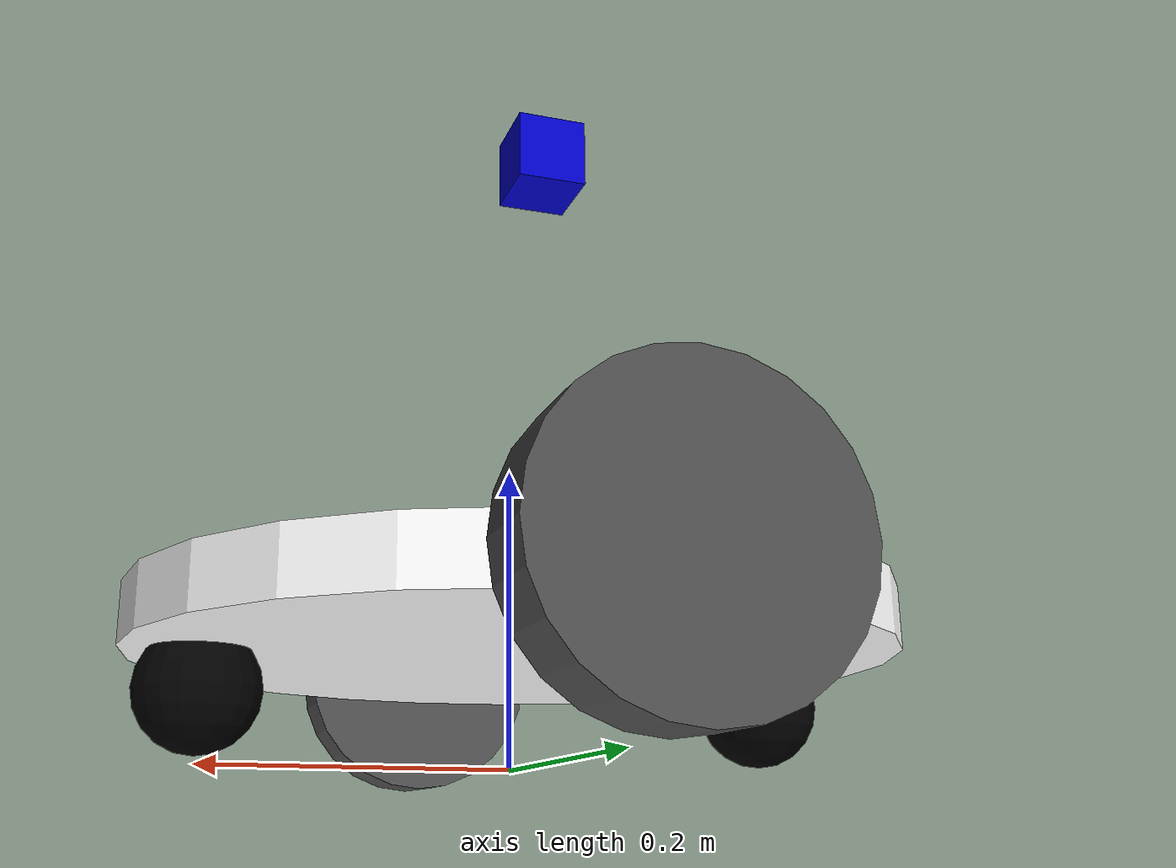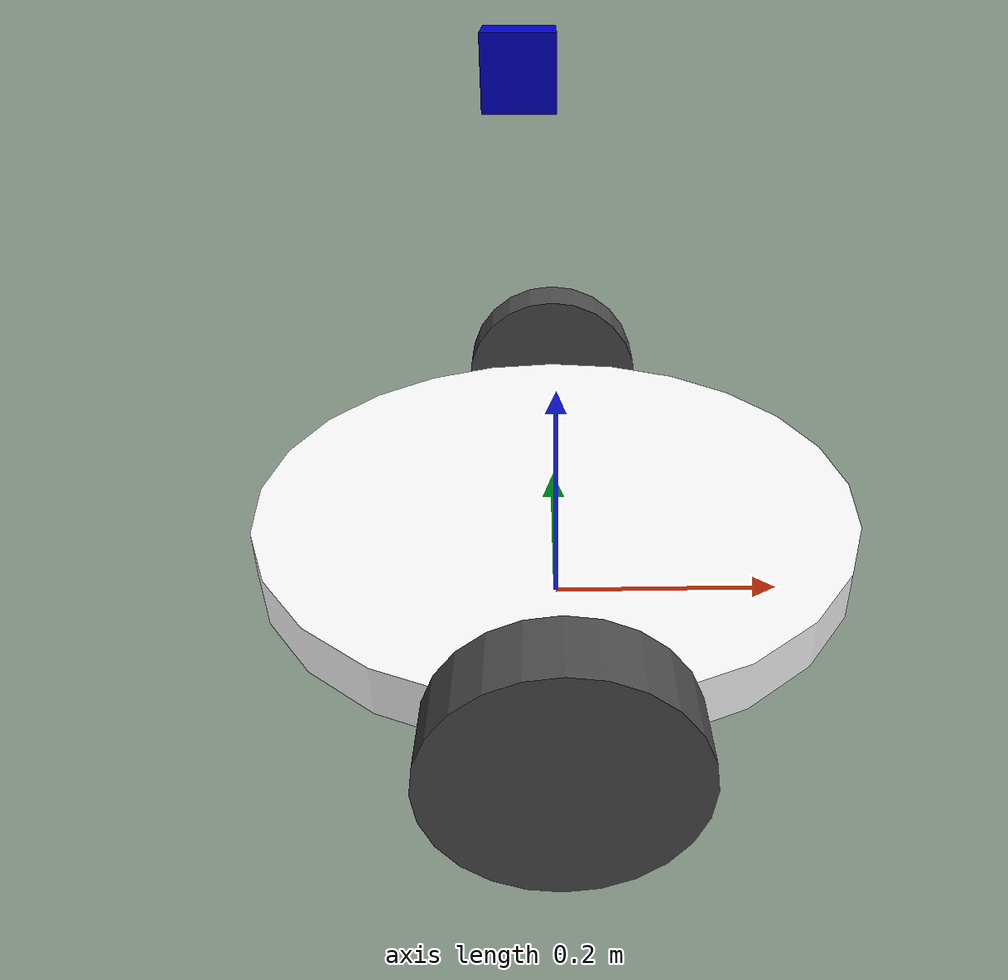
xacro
<?xml version="1.0"?>
<robot name="hoverpi"
  xmlns:xacro="http://www.ros.org/wiki/xacro">

  <xacro:include filename="$(find hover_bringup)/urdf/wheel.urdf.xacro" />

  <!-- Defining the colors used in this robot -->
  <material name="Black">
    <color rgba="0.0 0.0 0.0 1.0"/>
  </material>

  <material name="Red">
    <color rgba="0.8 0.0 0.0 1.0"/>
  </material>

  <material name="White">
    <color rgba="1.0 1.0 1.0 1.0"/>
  </material>

  <material name="Blue">
    <color rgba="0.0 0.0 0.8 1.0"/>
  </material>

  <!-- PROPERTY LIST -->
  <!--All units in m-kg-s-radians unit system -->
  <xacro:property name="M_PI" value="3.1415926535897931" />
  <xacro:property name="M_PI_2" value="1.570796327" />
  <xacro:property name="DEG_TO_RAD" value="0.017453293" />

  <!-- Main body radius and height -->
  <!-- Main Body Cylinder base   -->
  <xacro:property name="base_height" value="0.04" />
  <xacro:property name="base_radius" value="0.25" />
  <xacro:property name="base_mass" value="20" />
  <!-- in kg-->

  <xacro:property name="laser_height" value="0.30" />

  <!-- caster wheel radius and height -->
  <!-- caster wheel mass -->
  <xacro:property name="caster_f_height" value="0.04" />
  <xacro:property name="caster_f_radius" value="0.040" />
  <xacro:property name="caster_f_mass" value="0.5" />
  <!-- in kg-->

  <!-- caster wheel radius and height -->
  <!-- caster wheel mass -->
  <xacro:property name="caster_b_height" value="0.04" />
  <xacro:property name="caster_b_radius" value="0.040" />
  <xacro:property name="caster_b_mass" value="0.5" />
  <!-- in kg-->

  <!-- Wheels -->

  <xacro:property name="wheel_mass" value="2.5" />
  <!-- in kg-->

  <xacro:property name="base_x_origin_to_wheel_origin" value="0.25" />
  <xacro:property name="base_y_origin_to_wheel_origin" value="0.55" />
  <xacro:property name="base_z_origin_to_wheel_origin" value="0.0" />

  <!-- Hokuyo Laser scanner -->
  <xacro:property name="laser_size" value="0.05" />

  <!-- Macro for calculating inertia of cylinder -->
  <xacro:macro name="cylinder_inertia" params="m r h">
    <inertia ixx="${m*(3*r*r+h*h)/12}" ixy = "0" ixz = "0" iyy="${m*(3*r*r+h*h)/12}" iyz = "0" izz="${m*r*r/2}" />
  </xacro:macro>

  <!-- BASE-FOOTPRINT -->
  <!-- base_footprint is a fictitious link(frame) that is on the ground right below base_link origin -->
  <link name="base_footprint">
  </link>

  <gazebo reference="base_footprint">
    <turnGravityOff>false</turnGravityOff>
  </gazebo>

  <joint name="base_footprint_joint" type="fixed">
    <origin xyz="0 0 ${wheel_radius - base_z_origin_to_wheel_origin}" rpy="0 0 0" />
    <parent link="base_footprint"/>
    <child link="base_link" />
  </joint>

  <!-- BASE-LINK -->
  <!--Actual body/chassis of the robot-->
  <link name="base_link">
    <inertial>
      <mass value="${base_mass}" />
      <origin xyz="0 0 0" />
      <!--The 3x3 rotational inertia matrix. -->
      <cylinder_inertia m="${base_mass}" r="${base_radius}" h="${base_height}" />

    </inertial>
    <visual>
      <origin xyz="0 0 0" rpy="0 0 0" />
      <geometry>

        <cylinder length="${base_height}" radius="${base_radius}" />

      </geometry>
      <material name="White" />
    </visual>
    <collision>
      <origin xyz="0 0 0" rpy="0 0 0 " />
      <geometry>

        <cylinder length="${base_height}" radius="${base_radius}" />

      </geometry>
    </collision>
  </link>
  <gazebo reference="base_link">
    <material>Gazebo/White</material>
    <turnGravityOff>false</turnGravityOff>
  </gazebo>

  <!--Caster front  -->

  <link name="caster_front_link">

    <visual>
      <origin xyz="0 0.02 0" rpy="${M_PI/2} 0 0" />
      <geometry>
        <sphere radius="${caster_f_radius}" />
      </geometry>
      <material name="Black" />
    </visual>

    <collision>
      <geometry>

        <sphere radius="${caster_f_radius}" />

      </geometry>
      <origin xyz="0 0.02 0" rpy="${M_PI/2} 0 0" />
    </collision>
    <inertial>
      <mass value="${caster_f_mass}" />
      <origin xyz="0 0 0" />
      <inertia ixx="0.001" ixy="0.0" ixz="0.0" iyy="0.001" iyz="0.0" izz="0.001" />
    </inertial>
  </link>

  <joint name="caster_front_joint" type="fixed">
    <parent link="base_link"/>
    <child link="caster_front_link"/>
    <origin xyz="0.2 0.0 -0.025" rpy="${-M_PI/2} 0 0"/>
  </joint>

  <gazebo reference="caster_front_link">
    <turnGravityOff>false</turnGravityOff>
  </gazebo>

  <!--Caster back  -->

  <link name="caster_back_link">

    <visual>
      <origin xyz="0.02 0.02 0 " rpy="${M_PI/2} 0 0" />

      <geometry>

        <sphere radius="${caster_b_radius}" />

      </geometry>
      <material name="Black" />
    </visual>

    <collision>
      <geometry>
        <sphere radius="${caster_b_radius}" />
      </geometry>
      <origin xyz="0 0.02 0 " rpy="${M_PI/2} 0 0" />
    </collision>
    <inertial>
      <mass value="${caster_b_mass}" />
      <origin xyz="0 0 0" />
      <inertia ixx="0.001" ixy="0.0" ixz="0.0" iyy="0.001" iyz="0.0" izz="0.001" />
    </inertial>
  </link>

  <joint name="caster_back_joint" type="fixed">
    <parent link="base_link"/>
    <child link="caster_back_link"/>
    <origin xyz="-0.2 0.0 -0.0250" rpy="${-M_PI/2} 0 0"/>
  </joint>

  <gazebo reference="caster_back_link">
    <turnGravityOff>false</turnGravityOff>
  </gazebo>

  <!-- Wheel Definitions -->

  <wheel lr="right" parent="base_link" translateX="0" translateY="-0.5" flipY="1"/>
  <wheel lr="left" parent="base_link" translateX="0" translateY="0.5" flipY="1"/>

  <!-- SENSORS -->

  <!-- rplidar -->

  <link name="base_laser_link">
    <visual>
      <origin xyz="0 0 0" rpy="0 0 0" />
      <geometry>
        <box size="${laser_size} ${laser_size} ${laser_size}"/>
      </geometry>
      <material name="Blue" />
    </visual>
  </link>
  <joint name="rplidar_joint" type="fixed">
    <origin xyz="${ - laser_size/2} 0 ${base_height+laser_size/4 + laser_height}" rpy="0 0 0" />
    <parent link="base_link"/>
    <child link="base_laser_link" />
  </joint>
  <gazebo reference="base_laser_link">
    <material>Gazebo/Blue</material>)
    <turnGravityOff>false</turnGravityOff>
    <sensor type="ray" name="head_hokuyo_sensor">
      <pose>${laser_size/2} 0 0 0 0 0</pose>
      <visualize>false</visualize>
      <update_rate>8</update_rate>
      <ray>
        <scan>
          <horizontal>
            <samples>8000</samples>
            <resolution>1</resolution>
            <min_angle>-3.1415926535897931</min_angle>
            <max_angle>3.1415926535897931</max_angle>
          </horizontal>
        </scan>
        <range>
          <min>0.10</min>
          <max>12.0</max>
          <resolution>0.001</resolution>
        </range>
      </ray>
      <plugin name="ros_ray_sensor_controller" filename="libgazebo_ros_laser.so">
        <topicName>/laserscan</topicName>
        <frameName>base_laser_link</frameName>
      </plugin>
    </sensor>
  </gazebo>

  <!-- Differential drive controller  -->
  <gazebo>
    <plugin name="differential_drive_controller" filename="libgazebo_ros_diff_drive.so">

      <rosDebugLevel>Debug</rosDebugLevel>
      <publishWheelTF>true</publishWheelTF>
      <robotNamespace>/</robotNamespace>
      <publishTf>1</publishTf>
      <publishWheelJointState>true</publishWheelJointState>
      <alwaysOn>true</alwaysOn>
      <updateRate>100.0</updateRate>
      <leftJoint>left_wheel_joint</leftJoint>
      <rightJoint>right_wheel_joint</rightJoint>
      <wheelSeparation>${2*base_radius}</wheelSeparation>
      <wheelDiameter>${2*wheel_radius}</wheelDiameter>
      <broadcastTF>1</broadcastTF>
      <wheelTorque>30</wheelTorque>
      <wheelAcceleration>1.8</wheelAcceleration>
      <commandTopic>cmd_vel</commandTopic>
      <odometryFrame>odom</odometryFrame>
      <odometryTopic>odom</odometryTopic>
      <robotBaseFrame>base_footprint</robotBaseFrame>

    </plugin>
  </gazebo>

</robot>

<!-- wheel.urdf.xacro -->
<robot name="wheel"
  xmlns:xacro="http://www.ros.org/wiki/xacro">

  <!-- Wheels -->
  <xacro:property name="wheel_radius" value="0.09" />
  <xacro:property name="wheel_height" value="0.05" />
  <xacro:property name="wheel_mass" value="2.5" />
  <!-- in kg-->

  <xacro:property name="base_x_origin_to_wheel_origin" value="0" />
  <xacro:property name="base_y_origin_to_wheel_origin" value="0" />
  <xacro:property name="base_z_origin_to_wheel_origin" value="0.0" />

  <xacro:macro name="cylinder_inertia" params="m r h">
    <inertia ixx="${m*(3*r*r+h*h)/12}" ixy = "0" ixz = "0" iyy="${m*(3*r*r+h*h)/12}" iyz = "0" izz="${m*r*r/2}" />
  </xacro:macro>

  <xacro:macro name="wheel" params=" lr parent translateX translateY flipY">    <!--lr: left, right -->
    <link name="${lr}_wheel">
      <visual>
        <origin xyz="0 0 0" rpy="${flipY*M_PI/2} 0  0 " />
        <geometry>
          <cylinder length="${wheel_height}" radius="${wheel_radius}" />
        </geometry>
        <material name="DarkGray" />
      </visual>
      <collision>
        <origin xyz="0 0 0" rpy="${flipY*M_PI/2} 0 0 " />
        <geometry>
          <cylinder length="${wheel_height}" radius="${wheel_radius}" />
        </geometry>
      </collision>
      <inertial>
        <mass value="${wheel_mass}" />
        <origin xyz="0 0 0" />
        <cylinder_inertia m="${wheel_mass}" r="${wheel_radius}" h="${wheel_height}" />
      </inertial>
    </link>

    <gazebo reference="${lr}_wheel">
      <mu1 value="1.0"/>
      <mu2 value="1.0"/>
      <kp value="10000000.0" />
      <kd value="1.0" />
      <fdir1 value="1 0 0"/>
      <material>Gazebo/Grey</material>
      <turnGravityOff>false</turnGravityOff>
    </gazebo>

    <joint name="${lr}_wheel_joint" type="continuous">
      <parent link="${parent}"/>
      <child link="${lr}_wheel"/>
      <origin xyz="${translateX * base_x_origin_to_wheel_origin} ${translateY * base_y_origin_to_wheel_origin} ${base_z_origin_to_wheel_origin}" rpy="0 0 0" />
      <axis xyz="0 1 0" rpy="0  0" />
      <limit effort="100" velocity="100"/>
      <joint_properties damping="0.0" friction="0.0"/>
    </joint>

    <!-- Transmission is important to link the joints and the controller -->
    <transmission name="${lr}_wheel_joint_trans">
      <type>transmission_interface/SimpleTransmission</type>
      <joint name="${lr}_wheel_joint" />
      <actuator name="${lr}_wheel_joint_motor">
        <hardwareInterface>EffortJointInterface</hardwareInterface>
        <mechanicalReduction>1</mechanicalReduction>
      </actuator>
    </transmission>

  </xacro:macro>
</robot>
